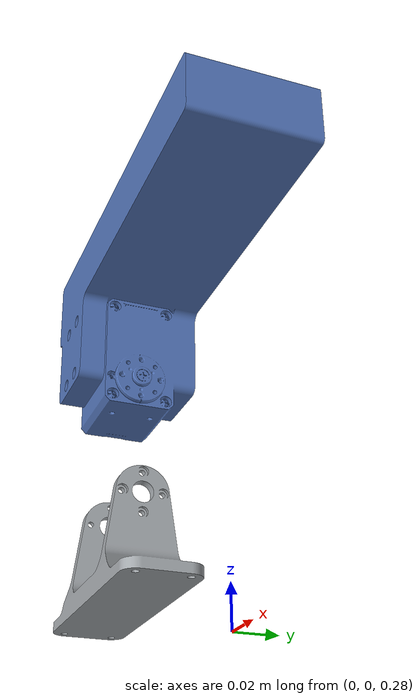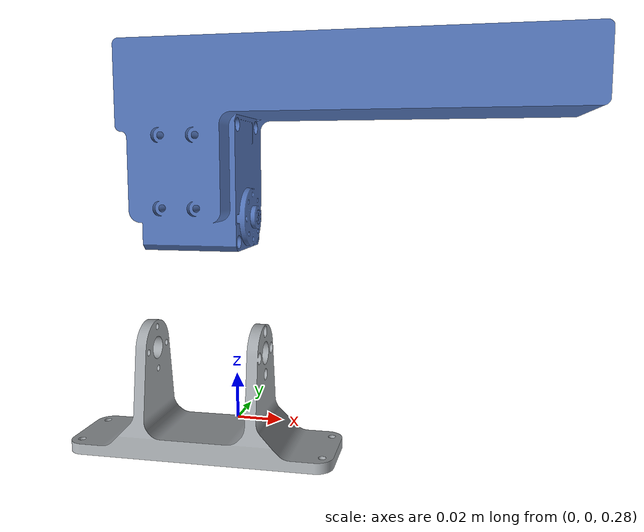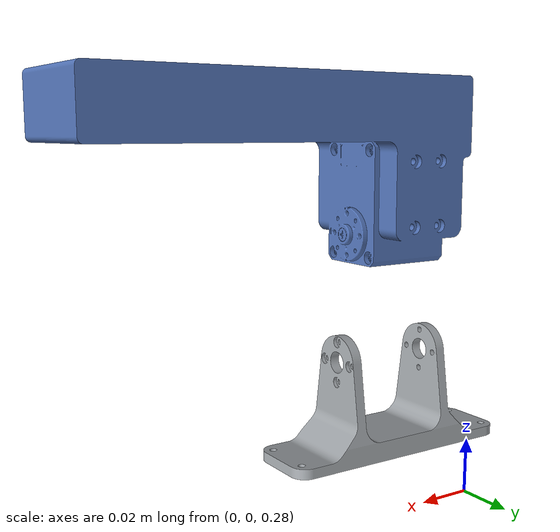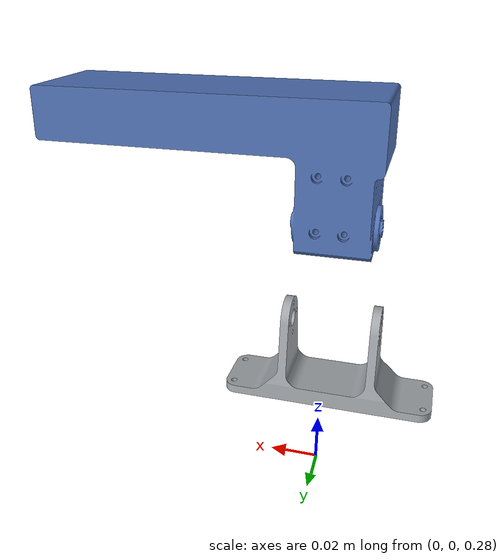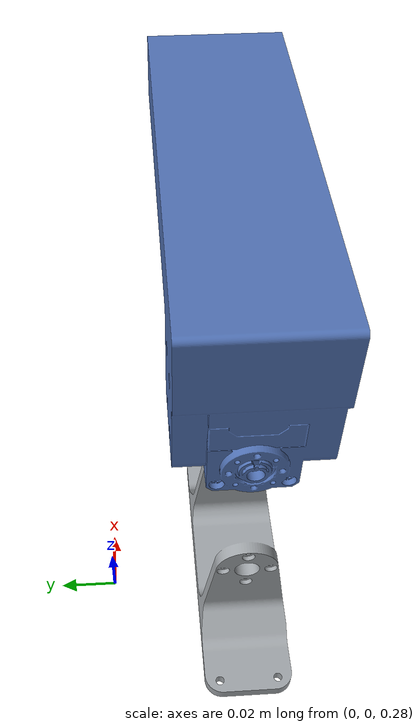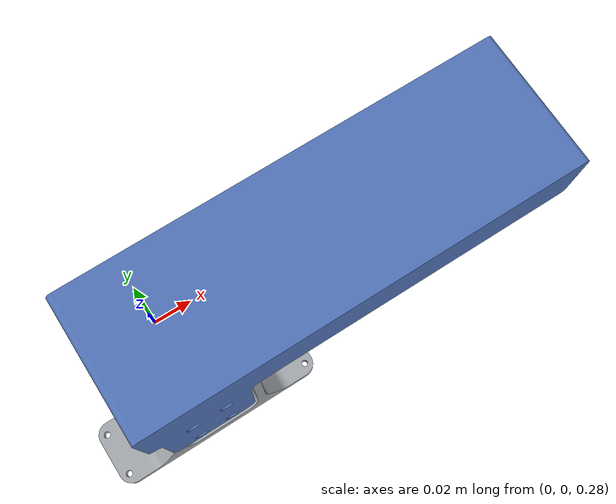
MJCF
<?xml version="1.0" ?>
<mujoco model="sysID_XC430_extended_fixed_scene">
  <include file="sysID_XC430_extended_fixed.xml"/>
  <statistic center="0 0 -0.05" extent="0.6"/>
  <visual>
    <headlight diffuse="0.6 0.6 0.6" ambient="0.3 0.3 0.3" specular="0 0 0"/>
    <rgba haze="0.15 0.25 0.35 1"/>
    <global azimuth="160" elevation="-20" offwidth="1280" offheight="720"/>
  </visual>
  <worldbody>
    <light pos="0 0 1.5" dir="0 0 -1" directional="true"/>
    <camera name="perspective" pos="0.7 -0.7 0.35" xyaxes="1 1 0 -1 1 3" mode="trackcom"/>
    <camera name="side" pos="0 -1 0.25" xyaxes="1 0 0 0 1 3" mode="trackcom"/>
    <camera name="top" pos="0 0 0.65" xyaxes="0 1 0 -1 0 0" mode="trackcom"/>
    <camera name="front" pos="1 0 0.25" xyaxes="0 1 0 -1 0 3" mode="trackcom"/>
  </worldbody>
</mujoco>

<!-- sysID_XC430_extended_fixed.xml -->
<mujoco model="sysID_XC430_extended">
  <compiler angle="radian" meshdir="assets" autolimits="true"/>
  <option timestep="0.001" iterations="50" solver="Newton" tolerance="1e-10"/>
  <default>
    <default class="sysID_XC430_extended">
      <joint damping="0.25" frictionloss="0.1" armature="0.005"/>
      <position kp="50" dampratio="1"/>
      <default class="visual">
        <geom type="mesh" contype="0" conaffinity="0" group="2"/>
      </default>
      <default class="collision">
        <geom group="3"/>
      </default>
    </default>
  </default>
  <worldbody>
    <body name="base" pos="0 0 0" quat="1 0 0 0" childclass="sysID_XC430_extended">
      <inertial pos="0.0267655 -0.0456118 0.399612" mass="0.1339" fullinertia="7.52202e-05 0.000280547 0.00024289 -2.6545e-07 -6.39526e-05 -1.72666e-07"/>
      <geom type="mesh" class="visual" pos="0.0267655 -0.0456118 0.399612" quat="1 0 0 0" mesh="base_visual" material="base_visual_material"/>
      <geom type="mesh" class="collision" pos="0.0267655 -0.0456118 0.399612" quat="1 0 0 0" mesh="base_collision" material="base_collision_material"/>
      <body name="arm_430" pos="0.0215522 -0.045682 0.372238" quat="8.50354e-16 -0.707107 7.77156e-16 -0.707107">
        <joint axis="0 0 1" name="joint_0" type="hinge" range="0.0 3.14159265358979"/>
        <inertial pos="-0.0787491 9.81819e-06 -0.019" mass="0.3549" fullinertia="0.000340755 0.000555983 0.000291749 -9.73566e-08 1.71887e-18 1.81619e-16"/>
        <geom type="mesh" class="visual" pos="-0.0787491 9.81819e-06 -0.019" quat="8.58707e-16 0.707107 -7.77156e-16 0.707107" mesh="arm_430_visual" material="arm_430_visual_material"/>
        <geom type="mesh" class="collision" pos="-0.0787491 9.81819e-06 -0.019" quat="8.58707e-16 0.707107 -7.77156e-16 0.707107" mesh="arm_430_collision" material="arm_430_collision_material"/>
      </body>
    </body>
  </worldbody>
  <asset>
    <mesh file="merged/base_visual.stl"/>
    <mesh file="merged/arm_430_collision.stl"/>
    <mesh file="merged/arm_430_visual.stl"/>
    <mesh file="merged/base_collision.stl"/>
    <material name="base_visual_material" rgba="0.315732 0.44617 0.708641 1"/>
    <material name="base_collision_material" rgba="0.315732 0.44617 0.708641 1"/>
    <material name="arm_430_visual_material" rgba="0.634878 0.653046 0.669534 1"/>
    <material name="arm_430_collision_material" rgba="0.634878 0.653046 0.669534 1"/>
  </asset>
  <actuator>
    <position class="sysID_XC430_extended" name="joint_0" joint="joint_0" inheritrange="1" kp="14.0"/>
  </actuator>
  <equality/>
  <keyframe>
    <key name="home" qpos="0" ctrl="0"/>
  </keyframe>
</mujoco>
